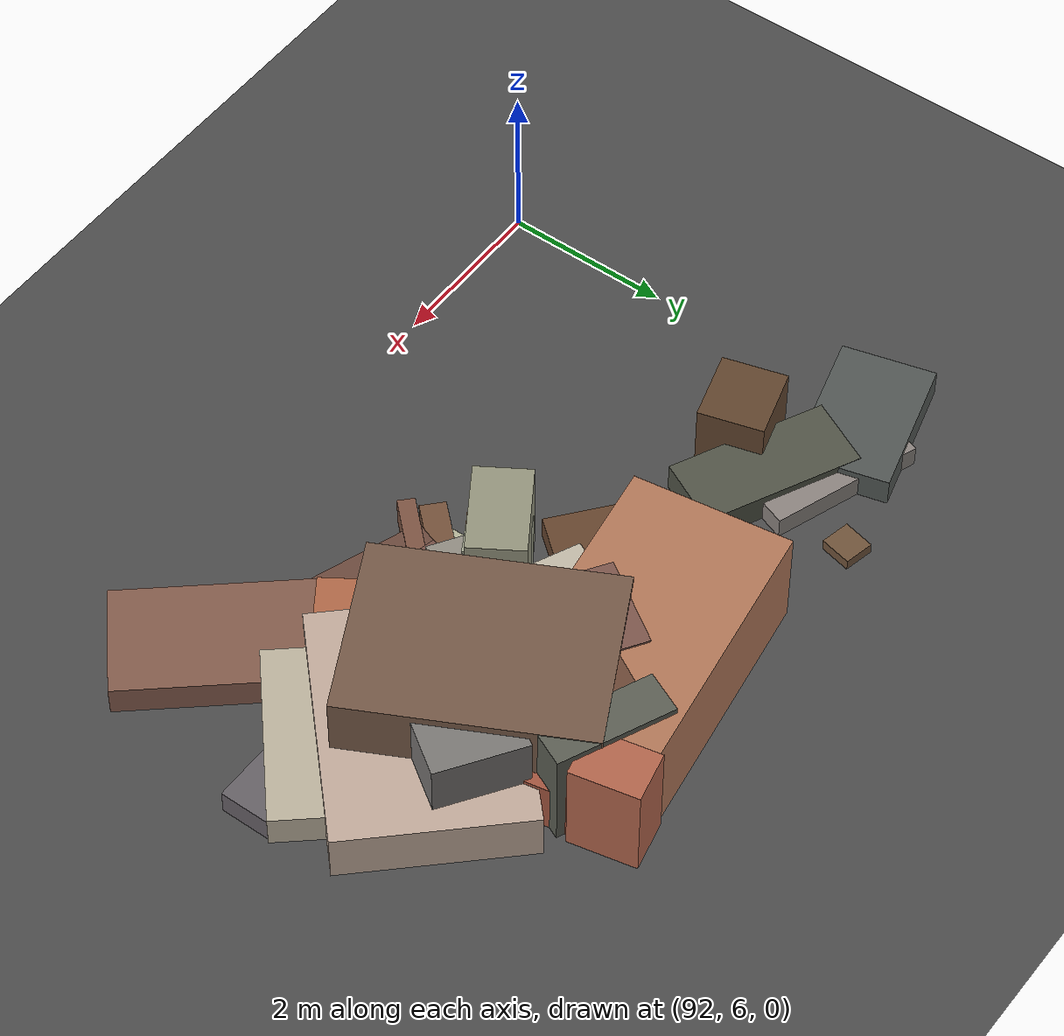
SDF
<sdf version="1.6">
 <world name="navitas_arena">
  <model name="ground_plane">
   <static>true</static>
   <link name="link">
    <collision name="collision">
     <geometry><plane><normal>0 0 1</normal><size>400 400</size></plane></geometry>
     <surface><friction><ode><mu>0.800</mu><mu2>0.800</mu2></ode></friction></surface>
    </collision>
    <visual name="visual">
     <cast_shadows>false</cast_shadows>
     <geometry><plane><normal>0 0 1</normal><size>400 400</size></plane></geometry>
     <material>
      <specular>0.04 0.04 0.04 1</specular>
      <script>
       <uri>file://media/materials/scripts/navitas_asphalt.material</uri>
       <name>Navitas/RealArenaAsphalt</name>
      </script>
     </material>
    </visual>
   </link>
  </model>
  <model name="deb_zor_37">
   <static>true</static>
   <pose>96.629 8.523 0.000 0 0 0</pose>
   <link name="link">
    <collision name="col_0">
     <pose>-0.215 0.467 0.419 0.000 0.000 3.667</pose>
     <geometry><box><size>0.578 0.714 0.837</size></box></geometry>
    </collision>
    <visual name="vis_0">
     <pose>-0.215 0.467 0.419 0.000 0.000 3.667</pose>
     <geometry><box><size>0.578 0.714 0.837</size></box></geometry>
     <material>
      <ambient>0.61 0.62 0.54 1</ambient>
      <diffuse>0.66 0.67 0.58 1</diffuse>
      <specular>0.05 0.05 0.045 1</specular>
     </material>
    </visual>
    <collision name="col_1">
     <pose>0.430 0.415 0.138 0.000 0.000 1.595</pose>
     <geometry><box><size>1.845 0.224 0.277</size></box></geometry>
    </collision>
    <visual name="vis_1">
     <pose>0.430 0.415 0.138 0.000 0.000 1.595</pose>
     <geometry><box><size>1.845 0.224 0.277</size></box></geometry>
     <material>
      <ambient>0.67 0.65 0.56 1</ambient>
      <diffuse>0.72 0.70 0.61 1</diffuse>
      <specular>0.05 0.05 0.045 1</specular>
     </material>
    </visual>
    <collision name="col_2">
     <pose>-0.251 0.470 0.618 0.000 0.000 3.707</pose>
     <geometry><box><size>1.118 0.675 1.235</size></box></geometry>
    </collision>
    <visual name="vis_2">
     <pose>-0.251 0.470 0.618 0.000 0.000 3.707</pose>
     <geometry><box><size>1.118 0.675 1.235</size></box></geometry>
     <material>
      <ambient>0.54 0.54 0.46 1</ambient>
      <diffuse>0.58 0.58 0.49 1</diffuse>
      <specular>0.05 0.05 0.045 1</specular>
     </material>
    </visual>
    <collision name="col_3">
     <pose>0.188 0.544 0.110 0.000 0.000 1.601</pose>
     <geometry><box><size>0.415 0.476 0.220</size></box></geometry>
    </collision>
    <visual name="vis_3">
     <pose>0.188 0.544 0.110 0.000 0.000 1.601</pose>
     <geometry><box><size>0.415 0.476 0.220</size></box></geometry>
     <material>
      <ambient>0.61 0.56 0.54 1</ambient>
      <diffuse>0.65 0.60 0.59 1</diffuse>
      <specular>0.05 0.05 0.045 1</specular>
     </material>
    </visual>
    <collision name="col_4">
     <pose>0.512 0.300 0.290 0.000 0.000 1.345</pose>
     <geometry><box><size>1.077 0.591 0.579</size></box></geometry>
    </collision>
    <visual name="vis_4">
     <pose>0.512 0.300 0.290 0.000 0.000 1.345</pose>
     <geometry><box><size>1.077 0.591 0.579</size></box></geometry>
     <material>
      <ambient>0.43 0.28 0.25 1</ambient>
      <diffuse>0.46 0.31 0.27 1</diffuse>
      <specular>0.05 0.05 0.045 1</specular>
     </material>
    </visual>
   </link>
  </model>
  <model name="deb_zor_83">
   <static>true</static>
   <pose>98.419 8.515 0.000 0 0 0</pose>
   <link name="link">
    <collision name="col_0">
     <pose>0.553 1.020 0.098 0.000 0.000 1.836</pose>
     <geometry><box><size>2.375 1.172 0.197</size></box></geometry>
    </collision>
    <visual name="vis_0">
     <pose>0.553 1.020 0.098 0.000 0.000 1.836</pose>
     <geometry><box><size>2.375 1.172 0.197</size></box></geometry>
     <material>
      <ambient>0.68 0.63 0.55 1</ambient>
      <diffuse>0.73 0.68 0.60 1</diffuse>
      <specular>0.05 0.05 0.045 1</specular>
     </material>
    </visual>
    <collision name="col_1">
     <pose>-0.419 -0.411 0.186 0.000 0.000 2.159</pose>
     <geometry><box><size>0.638 0.999 0.372</size></box></geometry>
    </collision>
    <visual name="vis_1">
     <pose>-0.419 -0.411 0.186 0.000 0.000 2.159</pose>
     <geometry><box><size>0.638 0.999 0.372</size></box></geometry>
     <material>
      <ambient>0.64 0.38 0.26 1</ambient>
      <diffuse>0.69 0.41 0.28 1</diffuse>
      <specular>0.05 0.05 0.045 1</specular>
     </material>
    </visual>
    <collision name="col_2">
     <pose>-0.359 -0.211 0.096 0.000 0.000 1.157</pose>
     <geometry><box><size>1.420 0.255 0.192</size></box></geometry>
    </collision>
    <visual name="vis_2">
     <pose>-0.359 -0.211 0.096 0.000 0.000 1.157</pose>
     <geometry><box><size>1.420 0.255 0.192</size></box></geometry>
     <material>
      <ambient>0.68 0.65 0.58 1</ambient>
      <diffuse>0.73 0.70 0.62 1</diffuse>
      <specular>0.05 0.05 0.045 1</specular>
     </material>
    </visual>
    <collision name="col_3">
     <pose>0.864 0.628 0.090 0.000 0.000 2.018</pose>
     <geometry><box><size>0.205 0.369 0.181</size></box></geometry>
    </collision>
    <visual name="vis_3">
     <pose>0.864 0.628 0.090 0.000 0.000 2.018</pose>
     <geometry><box><size>0.205 0.369 0.181</size></box></geometry>
     <material>
      <ambient>0.52 0.49 0.49 1</ambient>
      <diffuse>0.56 0.53 0.53 1</diffuse>
      <specular>0.05 0.05 0.045 1</specular>
     </material>
    </visual>
    <collision name="col_4">
     <pose>-0.398 0.843 0.170 0.000 0.000 2.625</pose>
     <geometry><box><size>1.509 0.840 0.340</size></box></geometry>
    </collision>
    <visual name="vis_4">
     <pose>-0.398 0.843 0.170 0.000 0.000 2.625</pose>
     <geometry><box><size>1.509 0.840 0.340</size></box></geometry>
     <material>
      <ambient>0.59 0.61 0.55 1</ambient>
      <diffuse>0.64 0.65 0.59 1</diffuse>
      <specular>0.05 0.05 0.045 1</specular>
     </material>
    </visual>
    <collision name="col_5">
     <pose>-0.525 0.273 0.151 0.000 0.000 3.039</pose>
     <geometry><box><size>1.675 1.744 0.301</size></box></geometry>
    </collision>
    <visual name="vis_5">
     <pose>-0.525 0.273 0.151 0.000 0.000 3.039</pose>
     <geometry><box><size>1.675 1.744 0.301</size></box></geometry>
     <material>
      <ambient>0.42 0.30 0.22 1</ambient>
      <diffuse>0.45 0.33 0.24 1</diffuse>
      <specular>0.05 0.05 0.045 1</specular>
     </material>
    </visual>
   </link>
  </model>
  <model name="deb_zor_117">
   <static>true</static>
   <pose>98.477 8.131 0.000 0 0 0</pose>
   <link name="link">
    <collision name="col_0">
     <pose>0.192 -0.754 0.165 0.000 0.000 -0.998</pose>
     <geometry><box><size>1.387 0.207 0.330</size></box></geometry>
    </collision>
    <visual name="vis_0">
     <pose>0.192 -0.754 0.165 0.000 0.000 -0.998</pose>
     <geometry><box><size>1.387 0.207 0.330</size></box></geometry>
     <material>
      <ambient>0.59 0.36 0.24 1</ambient>
      <diffuse>0.64 0.39 0.26 1</diffuse>
      <specular>0.05 0.05 0.045 1</specular>
     </material>
    </visual>
    <collision name="col_1">
     <pose>0.563 1.048 0.109 0.000 0.000 -0.425</pose>
     <geometry><box><size>1.086 0.305 0.218</size></box></geometry>
    </collision>
    <visual name="vis_1">
     <pose>0.563 1.048 0.109 0.000 0.000 -0.425</pose>
     <geometry><box><size>1.086 0.305 0.218</size></box></geometry>
     <material>
      <ambient>0.60 0.38 0.27 1</ambient>
      <diffuse>0.65 0.41 0.29 1</diffuse>
      <specular>0.05 0.05 0.045 1</specular>
     </material>
    </visual>
    <collision name="col_2">
     <pose>0.522 0.700 0.153 0.000 0.000 -0.003</pose>
     <geometry><box><size>3.047 0.675 0.305</size></box></geometry>
    </collision>
    <visual name="vis_2">
     <pose>0.522 0.700 0.153 0.000 0.000 -0.003</pose>
     <geometry><box><size>3.047 0.675 0.305</size></box></geometry>
     <material>
      <ambient>0.37 0.35 0.37 1</ambient>
      <diffuse>0.40 0.38 0.40 1</diffuse>
      <specular>0.05 0.05 0.045 1</specular>
     </material>
    </visual>
    <collision name="col_3">
     <pose>0.510 -0.947 0.184 0.000 0.000 -0.861</pose>
     <geometry><box><size>2.341 1.342 0.367</size></box></geometry>
    </collision>
    <visual name="vis_3">
     <pose>0.510 -0.947 0.184 0.000 0.000 -0.861</pose>
     <geometry><box><size>2.341 1.342 0.367</size></box></geometry>
     <material>
      <ambient>0.48 0.33 0.28 1</ambient>
      <diffuse>0.52 0.36 0.30 1</diffuse>
      <specular>0.05 0.05 0.045 1</specular>
     </material>
    </visual>
    <collision name="col_4">
     <pose>0.943 0.636 0.198 0.000 0.000 0.712</pose>
     <geometry><box><size>2.189 0.950 0.396</size></box></geometry>
    </collision>
    <visual name="vis_4">
     <pose>0.943 0.636 0.198 0.000 0.000 0.712</pose>
     <geometry><box><size>2.189 0.950 0.396</size></box></geometry>
     <material>
      <ambient>0.69 0.65 0.57 1</ambient>
      <diffuse>0.74 0.70 0.62 1</diffuse>
      <specular>0.05 0.05 0.045 1</specular>
     </material>
    </visual>
   </link>
  </model>
  <model name="deb_zor_142">
   <static>true</static>
   <pose>96.749 11.085 0.000 0 0 0</pose>
   <link name="link">
    <collision name="col_0">
     <pose>0.134 -0.752 0.091 0.000 0.000 3.889</pose>
     <geometry><box><size>1.485 0.704 0.181</size></box></geometry>
    </collision>
    <visual name="vis_0">
     <pose>0.134 -0.752 0.091 0.000 0.000 3.889</pose>
     <geometry><box><size>1.485 0.704 0.181</size></box></geometry>
     <material>
      <ambient>0.72 0.71 0.61 1</ambient>
      <diffuse>0.78 0.76 0.66 1</diffuse>
      <specular>0.05 0.05 0.045 1</specular>
     </material>
    </visual>
    <collision name="col_1">
     <pose>-0.876 -0.490 0.192 0.000 0.000 2.493</pose>
     <geometry><box><size>2.403 1.192 0.384</size></box></geometry>
    </collision>
    <visual name="vis_1">
     <pose>-0.876 -0.490 0.192 0.000 0.000 2.493</pose>
     <geometry><box><size>2.403 1.192 0.384</size></box></geometry>
     <material>
      <ambient>0.37 0.37 0.35 1</ambient>
      <diffuse>0.40 0.40 0.38 1</diffuse>
      <specular>0.05 0.05 0.045 1</specular>
     </material>
    </visual>
    <collision name="col_2">
     <pose>0.083 -0.383 0.120 0.000 0.000 3.164</pose>
     <geometry><box><size>2.828 1.254 0.239</size></box></geometry>
    </collision>
    <visual name="vis_2">
     <pose>0.083 -0.383 0.120 0.000 0.000 3.164</pose>
     <geometry><box><size>2.828 1.254 0.239</size></box></geometry>
     <material>
      <ambient>0.74 0.67 0.61 1</ambient>
      <diffuse>0.80 0.73 0.66 1</diffuse>
      <specular>0.05 0.05 0.045 1</specular>
     </material>
    </visual>
    <collision name="col_3">
     <pose>-0.784 -0.737 0.137 0.000 0.000 4.028</pose>
     <geometry><box><size>2.549 1.165 0.275</size></box></geometry>
    </collision>
    <visual name="vis_3">
     <pose>-0.784 -0.737 0.137 0.000 0.000 4.028</pose>
     <geometry><box><size>2.549 1.165 0.275</size></box></geometry>
     <material>
      <ambient>0.37 0.25 0.16 1</ambient>
      <diffuse>0.40 0.27 0.18 1</diffuse>
      <specular>0.05 0.05 0.045 1</specular>
     </material>
    </visual>
    <collision name="col_4">
     <pose>1.036 0.281 0.428 0.000 0.000 2.971</pose>
     <geometry><box><size>0.678 0.889 0.857</size></box></geometry>
    </collision>
    <visual name="vis_4">
     <pose>1.036 0.281 0.428 0.000 0.000 2.971</pose>
     <geometry><box><size>0.678 0.889 0.857</size></box></geometry>
     <material>
      <ambient>0.29 0.28 0.30 1</ambient>
      <diffuse>0.31 0.31 0.32 1</diffuse>
      <specular>0.05 0.05 0.045 1</specular>
     </material>
    </visual>
   </link>
  </model>
  <model name="deb_zor_200">
   <static>true</static>
   <pose>93.230 10.941 0.000 0 0 0</pose>
   <link name="link">
    <collision name="col_0">
     <pose>-0.791 -0.304 0.164 0.000 0.000 0.295</pose>
     <geometry><box><size>0.445 0.249 0.328</size></box></geometry>
    </collision>
    <visual name="vis_0">
     <pose>-0.791 -0.304 0.164 0.000 0.000 0.295</pose>
     <geometry><box><size>0.445 0.249 0.328</size></box></geometry>
     <material>
      <ambient>0.56 0.33 0.24 1</ambient>
      <diffuse>0.61 0.35 0.26 1</diffuse>
      <specular>0.05 0.05 0.045 1</specular>
     </material>
    </visual>
    <collision name="col_1">
     <pose>0.323 -0.402 0.179 0.000 0.000 -0.459</pose>
     <geometry><box><size>1.945 0.867 0.359</size></box></geometry>
    </collision>
    <visual name="vis_1">
     <pose>0.323 -0.402 0.179 0.000 0.000 -0.459</pose>
     <geometry><box><size>1.945 0.867 0.359</size></box></geometry>
     <material>
      <ambient>0.29 0.31 0.26 1</ambient>
      <diffuse>0.32 0.33 0.28 1</diffuse>
      <specular>0.05 0.05 0.045 1</specular>
     </material>
    </visual>
    <collision name="col_2">
     <pose>0.573 0.866 0.067 0.000 0.000 -0.224</pose>
     <geometry><box><size>0.361 0.385 0.135</size></box></geometry>
    </collision>
    <visual name="vis_2">
     <pose>0.573 0.866 0.067 0.000 0.000 -0.224</pose>
     <geometry><box><size>0.361 0.385 0.135</size></box></geometry>
     <material>
      <ambient>0.41 0.30 0.22 1</ambient>
      <diffuse>0.44 0.33 0.23 1</diffuse>
      <specular>0.05 0.05 0.045 1</specular>
     </material>
    </visual>
    <collision name="col_3">
     <pose>-0.173 0.067 0.134 0.000 0.000 -0.348</pose>
     <geometry><box><size>1.872 0.871 0.268</size></box></geometry>
    </collision>
    <visual name="vis_3">
     <pose>-0.173 0.067 0.134 0.000 0.000 -0.348</pose>
     <geometry><box><size>1.872 0.871 0.268</size></box></geometry>
     <material>
      <ambient>0.51 0.48 0.46 1</ambient>
      <diffuse>0.55 0.52 0.50 1</diffuse>
      <specular>0.05 0.05 0.045 1</specular>
     </material>
    </visual>
    <collision name="col_4">
     <pose>-0.059 -0.978 0.378 0.000 0.000 -1.297</pose>
     <geometry><box><size>0.781 0.866 0.756</size></box></geometry>
    </collision>
    <visual name="vis_4">
     <pose>-0.059 -0.978 0.378 0.000 0.000 -1.297</pose>
     <geometry><box><size>0.781 0.866 0.756</size></box></geometry>
     <material>
      <ambient>0.35 0.25 0.16 1</ambient>
      <diffuse>0.38 0.27 0.18 1</diffuse>
      <specular>0.05 0.05 0.045 1</specular>
     </material>
    </visual>
    <collision name="col_5">
     <pose>-0.587 -0.153 0.119 0.000 0.000 0.022</pose>
     <geometry><box><size>1.455 0.246 0.238</size></box></geometry>
    </collision>
    <visual name="vis_5">
     <pose>-0.587 -0.153 0.119 0.000 0.000 0.022</pose>
     <geometry><box><size>1.455 0.246 0.238</size></box></geometry>
     <material>
      <ambient>0.75 0.67 0.60 1</ambient>
      <diffuse>0.81 0.73 0.65 1</diffuse>
      <specular>0.05 0.05 0.045 1</specular>
     </material>
    </visual>
    <collision name="col_6">
     <pose>-0.937 0.101 0.175 0.000 0.000 0.259</pose>
     <geometry><box><size>1.718 1.120 0.351</size></box></geometry>
    </collision>
    <visual name="vis_6">
     <pose>-0.937 0.101 0.175 0.000 0.000 0.259</pose>
     <geometry><box><size>1.718 1.120 0.351</size></box></geometry>
     <material>
      <ambient>0.30 0.31 0.30 1</ambient>
      <diffuse>0.32 0.34 0.33 1</diffuse>
      <specular>0.05 0.05 0.045 1</specular>
     </material>
    </visual>
   </link>
  </model>
  <model name="deb_zor_303">
   <static>true</static>
   <pose>96.850 10.725 0.000 0 0 0</pose>
   <link name="link">
    <collision name="col_0">
     <pose>0.480 -0.680 0.156 0.000 0.000 -0.762</pose>
     <geometry><box><size>0.363 0.224 0.312</size></box></geometry>
    </collision>
    <visual name="vis_0">
     <pose>0.480 -0.680 0.156 0.000 0.000 -0.762</pose>
     <geometry><box><size>0.363 0.224 0.312</size></box></geometry>
     <material>
      <ambient>0.57 0.53 0.49 1</ambient>
      <diffuse>0.62 0.57 0.53 1</diffuse>
      <specular>0.05 0.05 0.045 1</specular>
     </material>
    </visual>
    <collision name="col_1">
     <pose>-0.316 0.324 0.086 0.000 0.000 -0.908</pose>
     <geometry><box><size>0.284 0.164 0.173</size></box></geometry>
    </collision>
    <visual name="vis_1">
     <pose>-0.316 0.324 0.086 0.000 0.000 -0.908</pose>
     <geometry><box><size>0.284 0.164 0.173</size></box></geometry>
     <material>
      <ambient>0.32 0.33 0.29 1</ambient>
      <diffuse>0.34 0.36 0.32 1</diffuse>
      <specular>0.05 0.05 0.045 1</specular>
     </material>
    </visual>
    <collision name="col_2">
     <pose>0.729 -0.445 0.161 0.000 0.000 -0.273</pose>
     <geometry><box><size>1.373 0.169 0.322</size></box></geometry>
    </collision>
    <visual name="vis_2">
     <pose>0.729 -0.445 0.161 0.000 0.000 -0.273</pose>
     <geometry><box><size>1.373 0.169 0.322</size></box></geometry>
     <material>
      <ambient>0.62 0.42 0.27 1</ambient>
      <diffuse>0.67 0.45 0.29 1</diffuse>
      <specular>0.05 0.05 0.045 1</specular>
     </material>
    </visual>
    <collision name="col_3">
     <pose>-0.703 -0.525 0.085 0.000 0.000 1.596</pose>
     <geometry><box><size>1.507 1.082 0.170</size></box></geometry>
    </collision>
    <visual name="vis_3">
     <pose>-0.703 -0.525 0.085 0.000 0.000 1.596</pose>
     <geometry><box><size>1.507 1.082 0.170</size></box></geometry>
     <material>
      <ambient>0.54 0.52 0.49 1</ambient>
      <diffuse>0.59 0.56 0.53 1</diffuse>
      <specular>0.05 0.05 0.045 1</specular>
     </material>
    </visual>
    <collision name="col_4">
     <pose>-0.231 -0.865 0.486 0.000 0.000 1.132</pose>
     <geometry><box><size>0.491 0.948 0.971</size></box></geometry>
    </collision>
    <visual name="vis_4">
     <pose>-0.231 -0.865 0.486 0.000 0.000 1.132</pose>
     <geometry><box><size>0.491 0.948 0.971</size></box></geometry>
     <material>
      <ambient>0.70 0.68 0.61 1</ambient>
      <diffuse>0.76 0.73 0.66 1</diffuse>
      <specular>0.05 0.05 0.045 1</specular>
     </material>
    </visual>
   </link>
  </model>
  <model name="deb_zor_387">
   <static>true</static>
   <pose>97.069 8.937 0.000 0 0 0</pose>
   <link name="link">
    <collision name="col_0">
     <pose>-0.293 -0.379 0.161 0.000 0.000 0.816</pose>
     <geometry><box><size>1.744 0.306 0.322</size></box></geometry>
    </collision>
    <visual name="vis_0">
     <pose>-0.293 -0.379 0.161 0.000 0.000 0.816</pose>
     <geometry><box><size>1.744 0.306 0.322</size></box></geometry>
     <material>
      <ambient>0.42 0.29 0.21 1</ambient>
      <diffuse>0.46 0.32 0.23 1</diffuse>
      <specular>0.05 0.05 0.045 1</specular>
     </material>
    </visual>
    <collision name="col_1">
     <pose>-0.248 -0.031 0.400 0.000 0.000 0.994</pose>
     <geometry><box><size>0.559 0.782 0.800</size></box></geometry>
    </collision>
    <visual name="vis_1">
     <pose>-0.248 -0.031 0.400 0.000 0.000 0.994</pose>
     <geometry><box><size>0.559 0.782 0.800</size></box></geometry>
     <material>
      <ambient>0.52 0.51 0.48 1</ambient>
      <diffuse>0.57 0.55 0.51 1</diffuse>
      <specular>0.05 0.05 0.045 1</specular>
     </material>
    </visual>
    <collision name="col_2">
     <pose>-0.275 0.140 0.503 0.000 0.000 0.636</pose>
     <geometry><box><size>1.036 0.359 1.006</size></box></geometry>
    </collision>
    <visual name="vis_2">
     <pose>-0.275 0.140 0.503 0.000 0.000 0.636</pose>
     <geometry><box><size>1.036 0.359 1.006</size></box></geometry>
     <material>
      <ambient>0.44 0.31 0.20 1</ambient>
      <diffuse>0.47 0.33 0.21 1</diffuse>
      <specular>0.05 0.05 0.045 1</specular>
     </material>
    </visual>
    <collision name="col_3">
     <pose>0.020 -0.499 0.102 0.000 0.000 2.015</pose>
     <geometry><box><size>0.340 0.165 0.204</size></box></geometry>
    </collision>
    <visual name="vis_3">
     <pose>0.020 -0.499 0.102 0.000 0.000 2.015</pose>
     <geometry><box><size>0.340 0.165 0.204</size></box></geometry>
     <material>
      <ambient>0.56 0.56 0.48 1</ambient>
      <diffuse>0.61 0.60 0.52 1</diffuse>
      <specular>0.05 0.05 0.045 1</specular>
     </material>
    </visual>
    <collision name="col_4">
     <pose>-0.112 -0.602 0.179 0.000 0.000 0.813</pose>
     <geometry><box><size>1.836 0.205 0.357</size></box></geometry>
    </collision>
    <visual name="vis_4">
     <pose>-0.112 -0.602 0.179 0.000 0.000 0.813</pose>
     <geometry><box><size>1.836 0.205 0.357</size></box></geometry>
     <material>
      <ambient>0.45 0.30 0.24 1</ambient>
      <diffuse>0.49 0.33 0.26 1</diffuse>
      <specular>0.05 0.05 0.045 1</specular>
     </material>
    </visual>
    <collision name="col_5">
     <pose>-0.310 -0.553 0.064 0.000 0.000 0.038</pose>
     <geometry><box><size>1.112 0.303 0.128</size></box></geometry>
    </collision>
    <visual name="vis_5">
     <pose>-0.310 -0.553 0.064 0.000 0.000 0.038</pose>
     <geometry><box><size>1.112 0.303 0.128</size></box></geometry>
     <material>
      <ambient>0.66 0.65 0.56 1</ambient>
      <diffuse>0.71 0.71 0.60 1</diffuse>
      <specular>0.05 0.05 0.045 1</specular>
     </material>
    </visual>
    <collision name="col_6">
     <pose>0.437 -0.418 0.169 0.000 0.000 1.225</pose>
     <geometry><box><size>1.714 1.539 0.338</size></box></geometry>
    </collision>
    <visual name="vis_6">
     <pose>0.437 -0.418 0.169 0.000 0.000 1.225</pose>
     <geometry><box><size>1.714 1.539 0.338</size></box></geometry>
     <material>
      <ambient>0.39 0.26 0.22 1</ambient>
      <diffuse>0.42 0.29 0.24 1</diffuse>
      <specular>0.05 0.05 0.045 1</specular>
     </material>
    </visual>
   </link>
  </model>
  <model name="chic_zor_6">
   <static>true</static>
   <pose>97.935 10.803 0.000 0 0 0</pose>
   <link name="link">
    <collision name="col_0">
     <pose>-1.214 0.271 0.625 0.000 0.000 3.287</pose>
     <geometry><box><size>3.400 1.887 1.250</size></box></geometry>
    </collision>
    <visual name="vis_0">
     <pose>-1.214 0.271 0.625 0.000 0.000 3.287</pose>
     <geometry><box><size>3.400 1.887 1.250</size></box></geometry>
     <material>
      <ambient>0.65 0.43 0.33 1</ambient>
      <diffuse>0.70 0.47 0.35 1</diffuse>
      <specular>0.05 0.05 0.045 1</specular>
     </material>
    </visual>
    <collision name="col_1">
     <pose>0.022 -0.859 0.669 0.000 0.000 2.044</pose>
     <geometry><box><size>2.846 2.153 1.338</size></box></geometry>
    </collision>
    <visual name="vis_1">
     <pose>0.022 -0.859 0.669 0.000 0.000 2.044</pose>
     <geometry><box><size>2.846 2.153 1.338</size></box></geometry>
     <material>
      <ambient>0.42 0.33 0.26 1</ambient>
      <diffuse>0.46 0.35 0.28 1</diffuse>
      <specular>0.05 0.05 0.045 1</specular>
     </material>
    </visual>
    <collision name="col_2">
     <pose>0.740 -1.129 0.306 0.000 0.000 3.904</pose>
     <geometry><box><size>2.927 2.202 0.611</size></box></geometry>
    </collision>
    <visual name="vis_2">
     <pose>0.740 -1.129 0.306 0.000 0.000 3.904</pose>
     <geometry><box><size>2.927 2.202 0.611</size></box></geometry>
     <material>
      <ambient>0.71 0.62 0.57 1</ambient>
      <diffuse>0.76 0.67 0.61 1</diffuse>
      <specular>0.05 0.05 0.045 1</specular>
     </material>
    </visual>
    <collision name="col_3">
     <pose>0.845 -0.525 0.329 0.000 0.000 1.759</pose>
     <geometry><box><size>2.688 0.207 0.659</size></box></geometry>
    </collision>
    <visual name="vis_3">
     <pose>0.845 -0.525 0.329 0.000 0.000 1.759</pose>
     <geometry><box><size>2.688 0.207 0.659</size></box></geometry>
     <material>
      <ambient>0.60 0.32 0.23 1</ambient>
      <diffuse>0.64 0.34 0.25 1</diffuse>
      <specular>0.05 0.05 0.045 1</specular>
     </material>
    </visual>
    <collision name="col_4">
     <pose>-1.123 -0.095 0.637 0.000 0.000 4.130</pose>
     <geometry><box><size>1.096 0.559 1.275</size></box></geometry>
    </collision>
    <visual name="vis_4">
     <pose>-1.123 -0.095 0.637 0.000 0.000 4.130</pose>
     <geometry><box><size>1.096 0.559 1.275</size></box></geometry>
     <material>
      <ambient>0.45 0.31 0.28 1</ambient>
      <diffuse>0.49 0.34 0.30 1</diffuse>
      <specular>0.05 0.05 0.045 1</specular>
     </material>
    </visual>
    <collision name="col_5">
     <pose>-0.381 0.057 0.663 0.000 0.000 2.635</pose>
     <geometry><box><size>0.838 1.081 1.325</size></box></geometry>
    </collision>
    <visual name="vis_5">
     <pose>-0.381 0.057 0.663 0.000 0.000 2.635</pose>
     <geometry><box><size>0.838 1.081 1.325</size></box></geometry>
     <material>
      <ambient>0.39 0.26 0.19 1</ambient>
      <diffuse>0.42 0.28 0.21 1</diffuse>
      <specular>0.05 0.05 0.045 1</specular>
     </material>
    </visual>
    <collision name="col_6">
     <pose>0.407 1.110 0.625 0.000 0.000 1.779</pose>
     <geometry><box><size>0.809 0.601 1.251</size></box></geometry>
    </collision>
    <visual name="vis_6">
     <pose>0.407 1.110 0.625 0.000 0.000 1.779</pose>
     <geometry><box><size>0.809 0.601 1.251</size></box></geometry>
     <material>
      <ambient>0.64 0.37 0.28 1</ambient>
      <diffuse>0.70 0.40 0.30 1</diffuse>
      <specular>0.05 0.05 0.045 1</specular>
     </material>
    </visual>
    <collision name="col_7">
     <pose>0.261 -0.315 0.616 0.000 0.000 2.795</pose>
     <geometry><box><size>1.033 1.059 1.232</size></box></geometry>
    </collision>
    <visual name="vis_7">
     <pose>0.261 -0.315 0.616 0.000 0.000 2.795</pose>
     <geometry><box><size>1.033 1.059 1.232</size></box></geometry>
     <material>
      <ambient>0.65 0.39 0.25 1</ambient>
      <diffuse>0.71 0.42 0.27 1</diffuse>
      <specular>0.05 0.05 0.045 1</specular>
     </material>
    </visual>
    <collision name="col_8">
     <pose>0.977 -0.287 0.622 0.000 0.000 4.114</pose>
     <geometry><box><size>0.683 1.080 1.244</size></box></geometry>
    </collision>
    <visual name="vis_8">
     <pose>0.977 -0.287 0.622 0.000 0.000 4.114</pose>
     <geometry><box><size>0.683 1.080 1.244</size></box></geometry>
     <material>
      <ambient>0.44 0.43 0.43 1</ambient>
      <diffuse>0.48 0.47 0.46 1</diffuse>
      <specular>0.05 0.05 0.045 1</specular>
     </material>
    </visual>
    <collision name="col_9">
     <pose>0.063 0.731 0.663 0.000 0.000 2.716</pose>
     <geometry><box><size>1.406 0.508 1.326</size></box></geometry>
    </collision>
    <visual name="vis_9">
     <pose>0.063 0.731 0.663 0.000 0.000 2.716</pose>
     <geometry><box><size>1.406 0.508 1.326</size></box></geometry>
     <material>
      <ambient>0.33 0.35 0.31 1</ambient>
      <diffuse>0.36 0.37 0.33 1</diffuse>
      <specular>0.05 0.05 0.045 1</specular>
     </material>
    </visual>
   </link>
  </model>
 </world>
</sdf>
